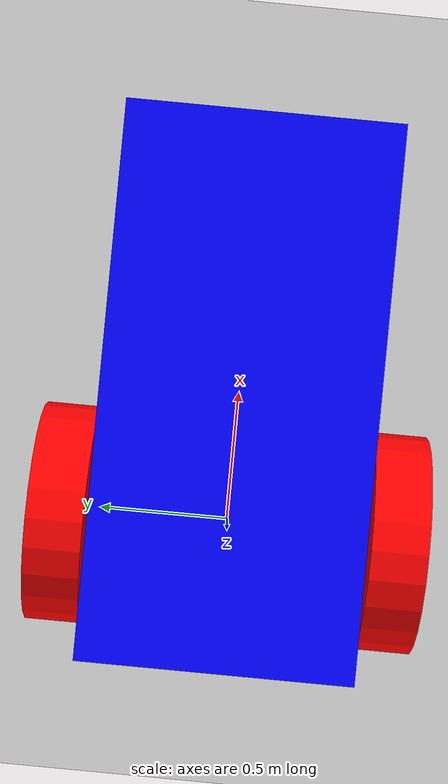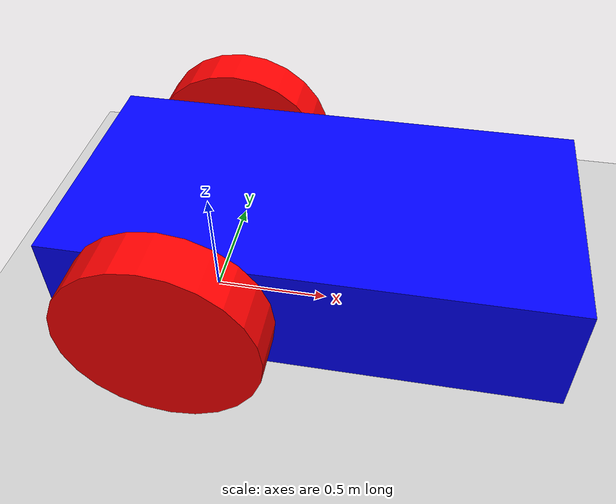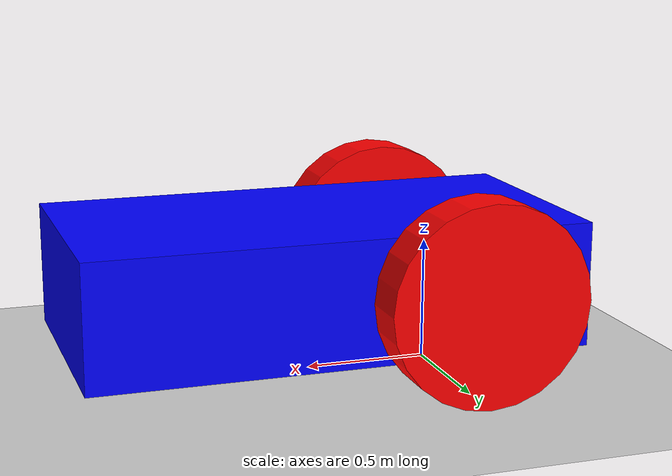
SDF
<?xml version="1.0" ?>
<sdf version="1.8">
    <world name="Moving_robot">
        <physics name="1ms" type="ignored">
            <max_step_size>0.001</max_step_size>
            <real_time_factor>1.0</real_time_factor>
        </physics>
        <plugin
            filename="gz-sim-physics-system"
            name="gz::sim::systems::Physics">
        </plugin>
        <plugin
            filename="gz-sim-user-commands-system"
            name="gz::sim::systems::UserCommands">
        </plugin>
        <plugin
            filename="gz-sim-scene-broadcaster-system"
            name="gz::sim::systems::SceneBroadcaster">
        </plugin>
        <plugin filename="gz-sim-sensors-system"
            name="gz::sim::systems::Sensors">
            <render_engine>ogre2</render_engine>
        </plugin>

        <gui fullscreen="0">
            <!-- 3D scene -->
            <plugin filename="MinimalScene" name="3D View">
                <gz-gui>
                <title>3D View</title>
                <property type="bool" key="showTitleBar">false</property>
                <property type="string" key="state">docked</property>
                </gz-gui>

                <engine>ogre2</engine>
                <scene>scene</scene>
                <ambient_light>0.4 0.4 0.4</ambient_light>
                <background_color>0.8 0.8 0.8</background_color>
                <camera_pose>-6 0 6 0 0.5 0</camera_pose>
            </plugin>

            <!-- Plugins that add functionality to the scene -->
            <plugin filename="EntityContextMenuPlugin" name="Entity context menu">
                <gz-gui>
                <property key="state" type="string">floating</property>
                <property key="width" type="double">5</property>
                <property key="height" type="double">5</property>
                <property key="showTitleBar" type="bool">false</property>
                </gz-gui>
            </plugin>
            <plugin filename="GzSceneManager" name="Scene Manager">
                <gz-gui>
                <property key="resizable" type="bool">false</property>
                <property key="width" type="double">5</property>
                <property key="height" type="double">5</property>
                <property key="state" type="string">floating</property>
                <property key="showTitleBar" type="bool">false</property>
                </gz-gui>
            </plugin>
            <plugin filename="InteractiveViewControl" name="Interactive view control">
                <gz-gui>
                <property key="resizable" type="bool">false</property>
                <property key="width" type="double">5</property>
                <property key="height" type="double">5</property>
                <property key="state" type="string">floating</property>
                <property key="showTitleBar" type="bool">false</property>
                </gz-gui>
            </plugin>
            <plugin filename="CameraTracking" name="Camera Tracking">
                <gz-gui>
                <property key="resizable" type="bool">false</property>
                <property key="width" type="double">5</property>
                <property key="height" type="double">5</property>
                <property key="state" type="string">floating</property>
                <property key="showTitleBar" type="bool">false</property>
                </gz-gui>
            </plugin>
            <!-- World control -->
            <plugin filename="WorldControl" name="World control">
                <gz-gui>
                <title>World control</title>
                <property type="bool" key="showTitleBar">false</property>
                <property type="bool" key="resizable">false</property>
                <property type="double" key="height">72</property>
                <property type="double" key="z">1</property>

                <property type="string" key="state">floating</property>
                <anchors target="3D View">
                    <line own="left" target="left"/>
                    <line own="bottom" target="bottom"/>
                </anchors>
                </gz-gui>

                <play_pause>true</play_pause>
                <step>true</step>
                <start_paused>true</start_paused>
                <use_event>true</use_event>

            </plugin>

            <!-- World statistics -->
            <plugin filename="WorldStats" name="World stats">
                <gz-gui>
                <title>World stats</title>
                <property type="bool" key="showTitleBar">false</property>
                <property type="bool" key="resizable">false</property>
                <property type="double" key="height">110</property>
                <property type="double" key="width">290</property>
                <property type="double" key="z">1</property>

                <property type="string" key="state">floating</property>
                <anchors target="3D View">
                    <line own="right" target="right"/>
                    <line own="bottom" target="bottom"/>
                </anchors>
                </gz-gui>

                <sim_time>true</sim_time>
                <real_time>true</real_time>
                <real_time_factor>true</real_time_factor>
                <iterations>true</iterations>
            </plugin>

            <!-- Inspector -->
            <plugin filename="ComponentInspector" name="Component inspector">
                <gz-gui>
                <property type="string" key="state">docked</property>
                </gz-gui>
            </plugin>

            <!-- Entity tree -->
            <plugin filename="EntityTree" name="Entity tree">
                <gz-gui>
                <property type="string" key="state">docked</property>
                </gz-gui>
            </plugin>

            <plugin filename="ImageDisplay" name="Image Display 3">
                <gz-gui>
                <title>RGBD: image</title>
                <property key="state" type="string">floating</property>
                <property type="double" key="width">350</property>
                <property type="double" key="height">315</property>
                <property type="double" key="y">320</property>
                </gz-gui>
                <topic>rgbd_camera/image</topic>
                <topic_picker>false</topic_picker>
            </plugin>
        </gui>

        <light type="directional" name="sun">
            <cast_shadows>true</cast_shadows>
            <pose>0 0 10 0 0 0</pose>
            <diffuse>0.8 0.8 0.8 1</diffuse>
            <specular>0.2 0.2 0.2 1</specular>
            <attenuation>
                <range>1000</range>
                <constant>0.9</constant>
                <linear>0.01</linear>
                <quadratic>0.001</quadratic>
            </attenuation>
            <direction>-0.5 0.1 -0.9</direction>
        </light>

        <model name="ground_plane">
            <static>true</static>
            <link name="link">
                <collision name="collision">
                <geometry>
                    <plane>
                    <normal>0 0 1</normal>
                    </plane>
                </geometry>
                </collision>
                <visual name="visual">
                <geometry>
                    <plane>
                    <normal>0 0 1</normal>
                    <size>100 100</size>
                    </plane>
                </geometry>
                <material>
                    <ambient>0.8 0.8 0.8 1</ambient>
                    <diffuse>0.8 0.8 0.8 1</diffuse>
                    <specular>0.8 0.8 0.8 1</specular>
                </material>
                </visual>
            </link>
        </model>

        <model name='vehicle_blue' canonical_link='chassis'>
            <pose relative_to='world'>0 0 0 0 0 0</pose>   <!--the pose is relative to the world by default-->

            <frame name="lidar_frame" attached_to='chassis'>
                <pose>0.8 0 0.5 0 0 0</pose>
            </frame>
            <link name='chassis'>
                <pose relative_to='__model__'>0.5 0 0.4 0 0 0</pose>
                <inertial> <!--inertial properties of the link mass, inertia matix-->
                    <mass>1.14395</mass>
                    <inertia>
                        <ixx>0.126164</ixx>
                        <ixy>0</ixy>
                        <ixz>0</ixz>
                        <iyy>0.416519</iyy>
                        <iyz>0</iyz>
                        <izz>0.481014</izz>
                    </inertia>
                </inertial>
                <visual name='visual'>
                    <geometry>
                        <box>
                            <size>2.0 1.0 0.5</size> <!--question: this size is in meter-->
                        </box>
                    </geometry>
                    <!--let's add color to our link-->
                    <material>
                        <ambient>0.0 0.0 1.0 1</ambient>
                        <diffuse>0.0 0.0 1.0 1</diffuse>
                        <specular>0.0 0.0 1.0 1</specular>
                    </material>
                </visual>
                <collision name='collision'> <!--todo: describe why we need the collision-->
                    <geometry>
                        <box>
                            <size>2.0 1.0 0.5</size>
                        </box>
                    </geometry>
                </collision>
                <sensor name='gpu_lidar' type='gpu_lidar'>"
                    <pose relative_to='lidar_frame'>0 0 0 0 0 0</pose>
                    <topic>lidar</topic>
                    <update_rate>10</update_rate>
                    <ray>
                        <scan>
                            <horizontal>
                            <samples>640</samples>
                            <resolution>1</resolution>
                            <min_angle>-1.396263</min_angle>
                            <max_angle>1.396263</max_angle>
                            </horizontal>
                            <vertical>
                            <samples>1</samples>
                            <resolution>0.01</resolution>
                            <min_angle>0</min_angle>
                            <max_angle>0</max_angle>
                            </vertical>
                        </scan>
                    <range>
                        <min>0.08</min>
                        <max>10.0</max>
                        <resolution>0.01</resolution>
                    </range>
                    </ray>
                    <always_on>1</always_on>
                    <visualize>true</visualize>
                </sensor>
            </link>

            <!--let's build the left wheel-->
            <link name='left_wheel'>
                <pose relative_to="chassis">-0.5 0.6 0 -1.5707 0 0</pose> <!--angles are in radian-->
                <inertial>
                    <mass>2</mass>
                    <inertia>
                        <ixx>0.145833</ixx>
                        <ixy>0</ixy>
                        <ixz>0</ixz>
                        <iyy>0.145833</iyy>
                        <iyz>0</iyz>
                        <izz>0.125</izz>
                    </inertia>
                </inertial>
                <visual name='visual'>
                    <geometry>
                        <cylinder>
                            <radius>0.4</radius>
                            <length>0.2</length>
                        </cylinder>
                    </geometry>
                    <material>
                        <ambient>1.0 0.0 0.0 1</ambient>
                        <diffuse>1.0 0.0 0.0 1</diffuse>
                        <specular>1.0 0.0 0.0 1</specular>
                    </material>
                </visual>
                <collision name='collision'>
                    <geometry>
                        <cylinder>
                            <radius>0.4</radius>
                            <length>0.2</length>
                        </cylinder>
                    </geometry>
                </collision>
            </link>

            <!--copy and paste for right wheel but change position-->
            <link name='right_wheel'>
                <pose relative_to="chassis">-0.5 -0.6 0 -1.5707 0 0</pose> <!--angles are in radian-->
                <inertial>
                    <mass>1</mass>
                    <inertia>
                        <ixx>0.145833</ixx>
                        <ixy>0</ixy>
                        <ixz>0</ixz>
                        <iyy>0.145833</iyy>
                        <iyz>0</iyz>
                        <izz>0.125</izz>
                    </inertia>
                </inertial>
                <visual name='visual'>
                    <geometry>
                        <cylinder>
                            <radius>0.4</radius>
                            <length>0.2</length>
                        </cylinder>
                    </geometry>
                    <material>
                        <ambient>1.0 0.0 0.0 1</ambient>
                        <diffuse>1.0 0.0 0.0 1</diffuse>
                        <specular>1.0 0.0 0.0 1</specular>
                    </material>
                </visual>
                <collision name='collision'>
                    <geometry>
                        <cylinder>
                            <radius>0.4</radius>
                            <length>0.2</length>
                        </cylinder>
                    </geometry>
                </collision>
            </link>

            <frame name="caster_frame" attached_to='chassis'>
                <pose>0.8 0 -0.2 0 0 0</pose>
            </frame>

            <!--caster wheel-->
            <link name='caster'>
                <pose relative_to='caster_frame'/>
                <inertial>
                    <mass>1</mass>
                    <inertia>
                        <ixx>0.1</ixx>
                        <ixy>0</ixy>
                        <ixz>0</ixz>
                        <iyy>0.1</iyy>
                        <iyz>0</iyz>
                        <izz>0.1</izz>
                    </inertia>
                </inertial>
                <visual name='visual'>
                    <geometry>
                        <sphere>
                            <radius>0.2</radius>
                        </sphere>
                    </geometry>
                    <material>
                        <ambient>0.0 1 0.0 1</ambient>
                        <diffuse>0.0 1 0.0 1</diffuse>
                        <specular>0.0 1 0.0 1</specular>
                    </material>
                </visual>
                <collision name='collision'>
                    <geometry>
                        <sphere>
                            <radius>0.2</radius>
                        </sphere>
                    </geometry>
                </collision>
            </link>

            <model name="rgbd_camera">
            <pose relative_to='chassis'>0 0 0.25 0 0.0 3.14</pose>
            <link name="link">
                <pose>0.05 0.05 0.05 0 0 0</pose>
                <inertial>
                <mass>0.1</mass>
                <inertia>
                    <ixx>0.000166667</ixx>
                    <iyy>0.000166667</iyy>
                    <izz>0.000166667</izz>
                </inertia>
                </inertial>
                <collision name="collision">
                <geometry>
                    <box>
                    <size>0.1 0.1 0.1</size>
                    </box>
                </geometry>
                </collision>
                <visual name="visual">
                <geometry>
                    <box>
                    <size>0.1 0.1 0.1</size>
                    </box>
                </geometry>
                </visual>
                <sensor name="rgbd_camera" type="rgbd_camera">
                <camera>
                    <horizontal_fov>1.047</horizontal_fov>
                    <image>
                    <width>320</width>
                    <height>240</height>
                    </image>
                    <clip>
                    <near>0.1</near>
                    <far>100</far>
                    </clip>
                </camera>
                <always_on>1</always_on>
                <update_rate>30</update_rate>
                <visualize>true</visualize>
                <topic>rgbd_camera</topic>
                <enable_metrics>true</enable_metrics>
                </sensor>
            </link>
            </model>

            <!--connecting these links together using joints-->
            <joint name='left_wheel_joint' type='revolute'> <!--continous joint is not supported yet-->
                <pose relative_to='left_wheel'/>
                <parent>chassis</parent>
                <child>left_wheel</child>
                <axis>
                    <xyz expressed_in='__model__'>0 1 0</xyz> <!--can be defined as any frame or even arbitrary frames-->
                    <limit>
                        <lower>-1.79769e+308</lower>    <!--negative infinity-->
                        <upper>1.79769e+308</upper>     <!--positive infinity-->
                    </limit>
                </axis>
            </joint>

            <joint name='right_wheel_joint' type='revolute'>
                <pose relative_to='right_wheel'/>
                <parent>chassis</parent>
                <child>right_wheel</child>
                <axis>
                    <xyz expressed_in='__model__'>0 1 0</xyz>
                    <limit>
                        <lower>-1.79769e+308</lower>    <!--negative infinity-->
                        <upper>1.79769e+308</upper>     <!--positive infinity-->
                    </limit>
                </axis>
            </joint>

            <joint name='rgbd_camera_joint' type='fixed'>
                <pose relative_to='chassis'/>
                <parent>chassis</parent>
                <child>rgbd_camera</child>
            </joint>

            <!--different type of joints ball joint--> <!--defult value is the child-->
            <joint name='caster_wheel' type='ball'>
                <parent>chassis</parent>
                <child>caster</child>
            </joint>

            <!--diff drive plugin-->
            <plugin
                filename="gz-sim-diff-drive-system"
                name="gz::sim::systems::DiffDrive">
                <left_joint>left_wheel_joint</left_joint>
                <right_joint>right_wheel_joint</right_joint>
                <wheel_separation>1.2</wheel_separation>
                <wheel_radius>0.4</wheel_radius>
                <odom_publish_frequency>1</odom_publish_frequency>
                <max_linear_acceleration>1</max_linear_acceleration>
                <min_linear_acceleration>-1</min_linear_acceleration>
                <max_angular_acceleration>2</max_angular_acceleration>
                <min_angular_acceleration>-2</min_angular_acceleration>
                <max_linear_velocity>0.5</max_linear_velocity>
                <min_linear_velocity>-0.5</min_linear_velocity>
                <max_angular_velocity>1</max_angular_velocity>
                <min_angular_velocity>-1</min_angular_velocity>
                <topic>cmd_vel</topic>
            </plugin>

        </model>
        <!-- Wall-->

    </world>
</sdf>
